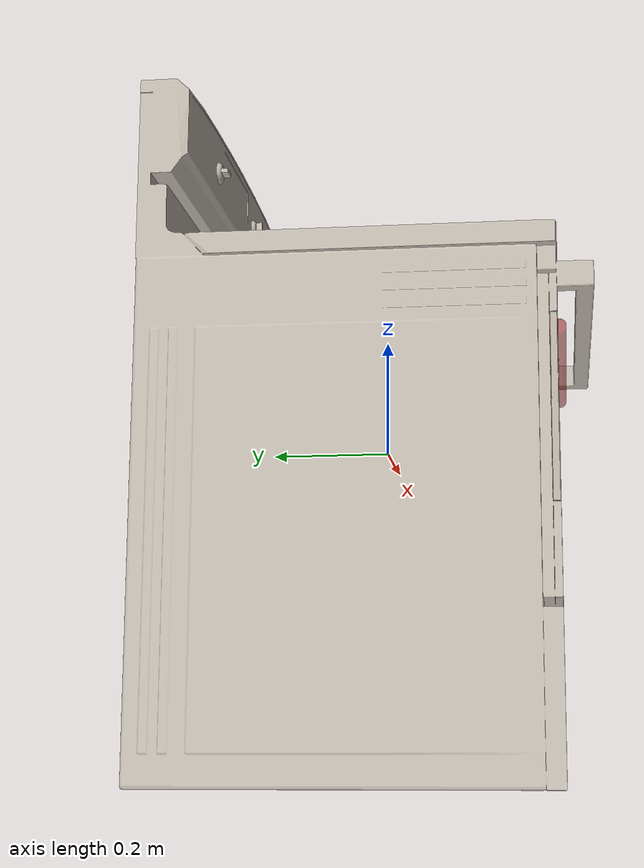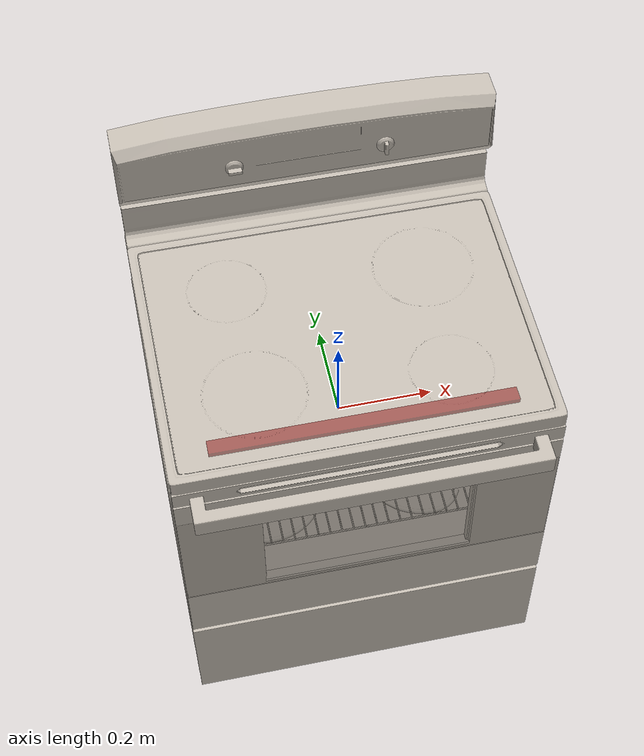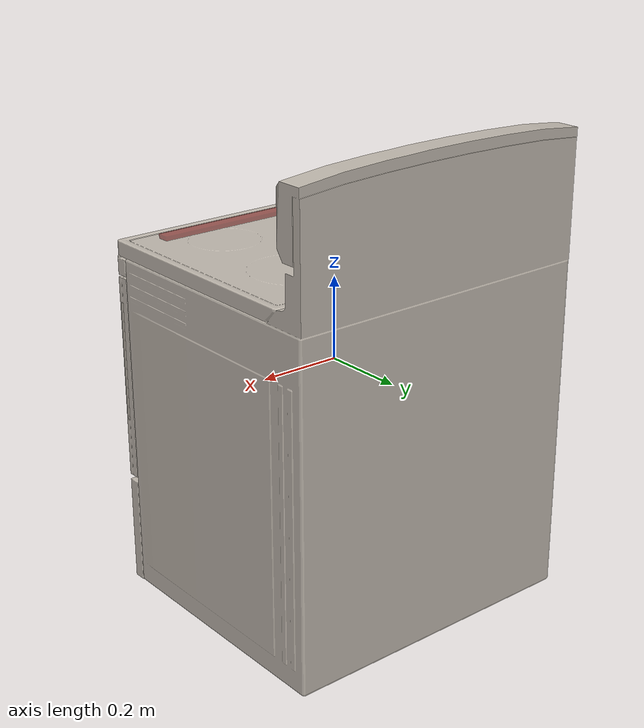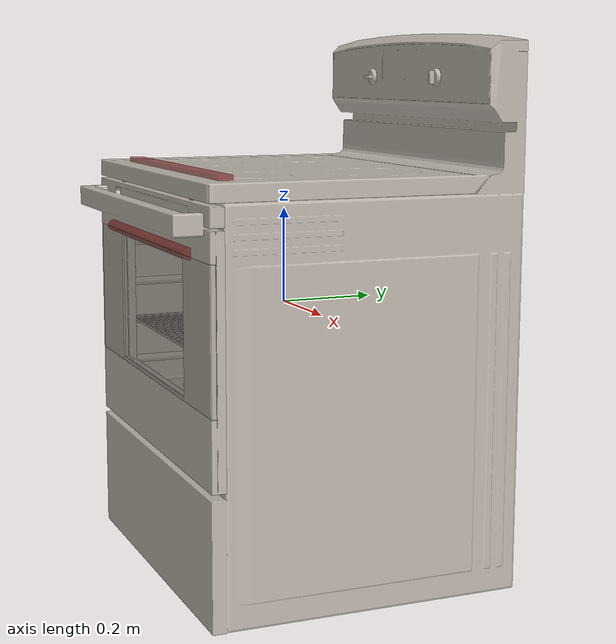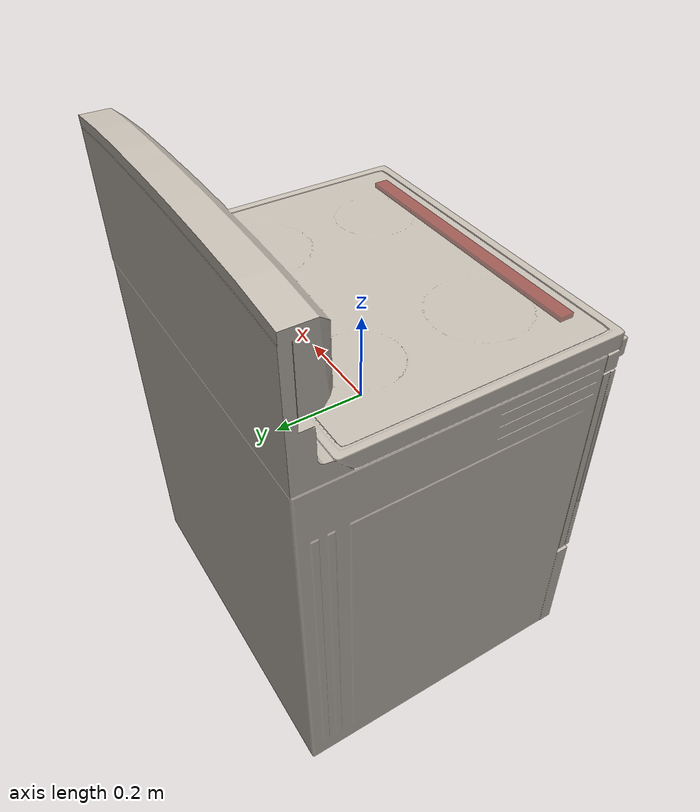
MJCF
<?xml version='1.0' encoding='UTF-8'?>
<mujoco model="model">
  <option timestep="0.002" gravity="0.0 0.0 -9.81"/>
  <compiler angle="radian"/>
  <asset>
    <mesh file="visuals/door.obj" name="door_vis"/>
    <mesh file="visuals/door_Clear.obj" name="door_Clear_vis"/>
    <mesh file="visuals/knob_temp.obj" name="knob_temp_vis"/>
    <mesh file="visuals/knob_time.obj" name="knob_time_vis"/>
    <mesh file="visuals/Body001.obj" name="Body001_vis"/>
    <mesh file="visuals/rack0.obj" name="rack0_vis"/>
    <texture file="visuals/T_BC001.png" name="Body001_material" type="2d"/>
    <material name="Body001_material" rgba="1 1 1 1.0" texture="Body001_material" shininess="0.4472135901451111" specular="2"/>
    <texture file="visuals/T_BC001.png" name="door_material" type="2d"/>
    <material name="door_material" rgba="1 1 1 1.0" texture="door_material" shininess="0.4472135901451111" specular="2"/>
    <texture file="visuals/T_BC001.png" name="door_Clear_material" type="2d"/>
    <material name="door_Clear_material" rgba="1 1 1 0.7935505509376526" texture="door_Clear_material" shininess="0.4472135901451111" specular="0.3103448502657381"/>
    <texture file="visuals/T_BC001.png" name="knob_temp_material" type="2d"/>
    <material name="knob_temp_material" rgba="1 1 1 1.0" texture="knob_temp_material" shininess="0.4472135901451111" specular="2"/>
    <texture file="visuals/T_BC001.png" name="knob_time_material" type="2d"/>
    <material name="knob_time_material" rgba="1 1 1 1.0" texture="knob_time_material" shininess="0.4472135901451111" specular="2"/>
    <texture file="visuals/T_BC001.png" name="rack0_material" type="2d"/>
    <material name="rack0_material" rgba="1 1 1 1.0" texture="rack0_material" shininess="0.4472135901451111" specular="3"/>
  </asset>
  <default>
    <default class="visual">
      <geom conaffinity="0" contype="0" group="1" type="mesh"/>
    </default>
    <default class="collision">
      <geom group="0" rgba="0.5 0 0 0.5"/>
    </default>
    <default class="spawn">
      <geom group="0" rgba="1 1 1 0.5" contype="0" conaffinity="0"/>
      <site group="0" rgba="1 1 1 0.5"/>
    </default>
    <default class="region">
      <geom group="1" conaffinity="0" contype="0" rgba="0 1 0 0"/>
    </default>
  </default>
  <worldbody>
    <body>
      <body name="object">
        <geom mesh="Body001_vis" type="mesh" solimp="0.998 0.998 0.001" solref="0.001 1" friction="0.95 0.3 0.1" class="visual" material="Body001_material"/>
        <geom class="collision" type="box" pos="8.997171896396594e-09 0.03359567001461983 -0.23666268587112427" size="0.29789331555366516 0.28025561571121216 0.06047181040048599" quat="1.0 0.0 0.0 0.0"/>
        <geom class="collision" type="box" pos="8.997171896396594e-09 0.03359567001461983 0.152528315782547" size="0.297891765832901 0.28025561571121216 0.0229275394231081" quat="1.0 0.0 0.0 0.0"/>
        <geom class="collision" type="box" pos="8.997171896396594e-09 0.2713991701602936 -0.026509864255785942" size="0.2978918254375458 0.0424521267414093 0.16321706771850586" quat="1.0 0.0 0.0 0.0"/>
        <geom class="collision" type="box" pos="8.997171896396594e-09 -0.237870991230011 0.23620638251304626" size="0.29789188504219055 0.01453822199255228 0.06143416091799736" quat="1.0 0.0 0.0 0.0"/>
        <geom class="collision" type="box" pos="-0.26134997606277466 -0.006889544427394867 -0.02650986984372139" size="0.03654332831501961 0.23991259932518005 0.16321706771850586" quat="1.0 0.0 0.0 0.0"/>
        <geom class="collision" type="box" pos="0.2615256905555725 -0.006889544427394867 -0.02650986984372139" size="0.03636763244867325 0.23991259932518005 0.16321706771850586" quat="1.0 0.0 0.0 0.0"/>
        <geom class="collision" type="box" pos="0.20561546087265015 -0.008686602115631104 -0.08421019464731216" size="0.005245341453701258 0.1396121233701706 0.0022579608485102654" quat="1.0 0.0 0.0 0.0"/>
        <geom class="collision" type="box" pos="-0.2059779167175293 -0.008686602115631104 -0.0844443291425705" size="0.005245341453701258 0.1396121233701706 0.0022579608485102654" quat="1.0 0.0 0.0 0.0"/>
        <geom class="collision" type="box" pos="-0.25359785556793213 0.01937284506857395 -0.030206579715013504" size="0.04429559409618378 0.18684671819210052 0.08682307600975037" quat="1.0 0.0 0.0 0.0"/>
        <geom class="collision" type="box" pos="0.2535504698753357 0.019070351496338844 -0.030206579715013504" size="0.04434296488761902 0.18654409050941467 0.086823008954525" quat="1.0 0.0 0.0 0.0"/>
        <body name="door">
         <joint axis="1.0 0.0 0.0" pos="-4.103255923837423e-05 -0.26975842006504536 -0.2657351791858673" limited="true" name="door_joint" range="0.0 1.05" type="hinge" damping="1" frictionloss="1" armature="1" stiffness="2"/>
          <geom mesh="door_vis" type="mesh" solimp="0.998 0.998 0.001" solref="0.001 1" friction="0.95 0.3 0.1" class="visual" material="door_material"/>
          <geom class="collision" type="box" pos="-4.103255923837423e-05 -0.2616859972476959 -0.0484561026096344" size="0.29785436391830444 0.008072422817349434 0.2172790765762329" quat="1.0 0.0 0.0 0.0" name="door_main"/>
          <geom class="collision" type="cylinder" pos="-3.313751708336433e-17 -0.3022207021713257 0.14923810958862305" size="0.01154937595129013 0.27145805954933167" quat="0.7071068286895752 -4.750302551315144e-08 0.7071067094802856 4.7503014855010406e-08" name="door_handle_main"/>
          <body name="door_Clear">
            <geom mesh="door_Clear_vis" type="mesh" solimp="0.998 0.998 0.001" solref="0.001 1" friction="0.95 0.3 0.1" class="visual" material="door_Clear_material"/>
          </body>
        </body>
        <body name="knob_temp">
          <joint axis="0.0 1.0 0.0" pos="-0.23529845476150513 -0.27033066749572754 0.23625878989696503" limited="true" name="knob_temp_joint" range="0.0 5.585053606381854" type="hinge" damping="0.05" armature="1" frictionloss="0.75"/>
          <geom mesh="knob_temp_vis" type="mesh" solimp="0.998 0.998 0.001" solref="0.001 1" friction="0.95 0.3 0.1" class="visual" material="knob_temp_material"/>
          <geom class="collision" type="cylinder" pos="-0.23528419435024261 -0.2644576132297516 0.2362239807844162" size="0.02280486561357975 0.010639902204275131" quat="0.7071068286895752 0.7071067690849304 -1.5700924318127872e-16 -5.9269340452702814e-24" name="knob_temp_main" friction="100 0.5 0.01"/>
          <geom class="collision" type="box" pos="-0.23520402610301971 -0.28180527687072754 0.2357035130262375" size="0.005530590191483498 0.006051141303032637 0.016372092068195343" quat="1.0 0.0 0.0 0.0" friction="100 0.5 0.01"/>
        </body>
        <body name="knob_time">
          <joint axis="0.0 -1.0 0.0" pos="0.23303470015525818 -0.27033063769340515 0.23482543230056763" name="knob_time_joint" range="-1.0471975511965976 3.141592653589793" type="hinge" damping="0.05" armature="1" frictionloss="0.75"/>
          <geom mesh="knob_time_vis" type="mesh" solimp="0.998 0.998 0.001" solref="0.001 1" friction="0.95 0.3 0.1" class="visual" material="knob_time_material"/>
          <geom class="collision" type="cylinder" pos="0.23303470015525818 -0.26409900188446045 0.23482543230056763" size="0.02280486561357975 0.010685468092560768" quat="0.7071068286895752 0.7071067690849304 -1.5700924318127872e-16 -5.9269340452702814e-24" name="knob_time_main" friction="100 0.5 0.01"/>
          <geom class="collision" type="box" pos="0.23303470015525818 -0.28180527687072754 0.2357035130262375" size="0.005530590191483498 0.006051141303032637 0.016372092068195343" quat="1.0 0.0 0.0 0.0" friction="100 0.5 0.01"/>
        </body>
        <body name="rack0">
          <geom class="region" name="reg_rack0" type="box" pos="-0.0014535337686538696 0.015737280249595642 0.018328838050365448" size="0.18742711639404297 0.14561131393909454 0.10660755431652069"/>
          <joint axis="0.0 -1.0 0.0" pos="-1.658499240875244e-05 0.015904594212770462 -0.0878145769238472" limited="true" name="rack0_joint" range="0.0 0.30" type="slide" damping="1" frictionloss="1" armature=".01" stiffness="0.05"/>
          <geom mesh="rack0_vis" type="mesh" solimp="0.998 0.998 0.001" solref="0.001 1" friction="0.95 0.3 0.1" class="visual" material="rack0_material"/>
          <geom class="collision" type="box" pos="-1.658499240875244e-05 -0.13808530569076538 -0.0878145769238472" size="0.19845271110534668 0.003500240622088313 0.011858089827001095" quat="1.0 0.0 0.0 0.0"/>
          <geom class="collision" type="box" pos="-1.658499240875244e-05 0.1694319248199463 -0.0878145769238472" size="0.19845271110534668 0.003500240622088313 0.011858089827001095" quat="1.0 0.0 0.0 0.0"/>
          <geom class="collision" type="box" pos="-1.658499240875244e-05 0.015257209539413452 -0.09638398885726929" size="0.19845271110534668 0.1511310338973999 0.0032886744011193514" quat="1.0 0.0 0.0 0.0"/>
          <geom class="collision" type="box" pos="-0.2011500597000122 0.015257209539413452 -0.0787535309791565" size="0.005066304467618465 0.1511310338973999 0.0028946958482265472" quat="1.0 0.0 0.0 0.0"/>
          <geom class="collision" type="box" pos="0.20123517513275146 0.015257209539413452 -0.07868973165750504" size="0.005066304467618465 0.1511310338973999 0.0027903129812330008" quat="1.0 0.0 0.0 0.0"/>
          <geom class="collision" type="box" pos="0.19513991475105286 0.015257209539413452 -0.08776701241731644" size="0.0027219720650464296 0.1511310338973999 0.01186759490519762" quat="1.0 0.0 0.0 0.0"/>
          <geom class="collision" type="box" pos="-0.19634169340133667 0.015257209539413452 -0.08776701241731644" size="0.0027219720650464296 0.1511310338973999 0.01186759490519762" quat="1.0 0.0 0.0 0.0"/>
        </body>
        <geom class="region" name="reg_int" type="box" pos="-9.096413850784302e-05 -0.010981820523738861 -0.022656604647636414" size="0.21881735867261887 0.2343974912762642 0.14772255516052246"/>
        <geom class="region" name="reg_main" type="box" pos="-7.450580596923828e-09 0.030613943934440613 0.0" size="0.29889331555366516 0.284237487077713 0.2981334159374237"/>
      </body>
    </body>
  </worldbody>
  <actuator>
    <motor name="door_joint_actuator" joint="door_joint" gear="50"/>
    <motor name="knob_temp_joint_actuator" joint="knob_temp_joint" gear="10"/>
    <motor name="knob_time_joint_actuator" joint="knob_time_joint" gear="10"/>
    <motor name="rack0_joint_actuator" joint="rack0_joint" gear="50"/>
  </actuator>
</mujoco>
